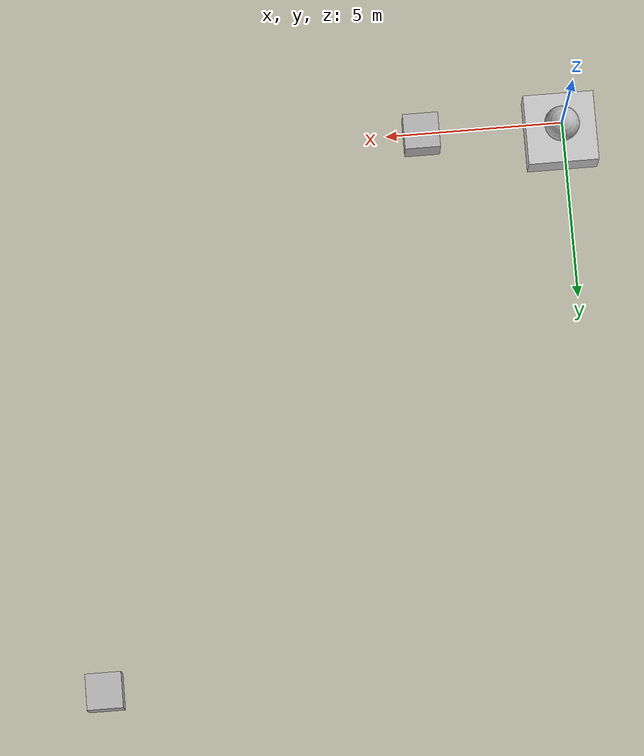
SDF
<?xml version="1.0" ?>
<sdf version="1.7">
  <world name="nested_model_world">
    <physics name="1ms" type="ignored">
      <max_step_size>0.001</max_step_size>
      <real_time_factor>0</real_time_factor>
    </physics>
    <plugin
      filename="libignition-gazebo-physics-system.so"
      name="ignition::gazebo::systems::Physics">
    </plugin>
    <plugin
      filename="libignition-gazebo-scene-broadcaster-system.so"
      name="ignition::gazebo::systems::SceneBroadcaster">
    </plugin>

    <scene>
      <ambient>1.0 1.0 1.0</ambient>
      <background>0.8 0.8 0.8</background>
    </scene>
    <model name="ground_box">
      <static>true</static>
      <pose>0 0 -1 0 0 0</pose>
      <link name="link">
        <collision name="collision">
          <geometry>
            <box>
              <size>2 2 1</size>
            </box>
          </geometry>
        </collision>
        <visual name="visual">
          <geometry>
            <box>
              <size>2 2 1</size>
            </box>
          </geometry>
          <material>
            <ambient>0.8 0.8 0.8 1</ambient>
            <diffuse>0.8 0.8 0.8 1</diffuse>
            <specular>0.8 0.8 0.8 1</specular>
          </material>
        </visual>
      </link>
    </model>

    <model name="model_00">
      <pose>0 0 0.0 0 0 0</pose>
      <link name="link_00">
        <collision name="collision_00">
          <geometry>
            <sphere>
              <radius>0.5</radius>
            </sphere>
          </geometry>
        </collision>
        <visual name="visual_00">
          <geometry>
            <sphere>
              <radius>0.5</radius>
            </sphere>
          </geometry>
        </visual>
      </link>

      <model name="model_01">
        <pose>4 0 0.0 0 0 0</pose>
        <link name="link_01">
          <collision name="collision_01">
            <geometry>
              <box>
                <size>1 1 1</size>
              </box>
            </geometry>
          </collision>
          <visual name="visual_01">
            <geometry>
              <box>
                <size>1 1 1</size>
              </box>
            </geometry>
          </visual>
        </link>
      </model>
    </model>

    <!--
      similar to the nested model above, but each model in this case
      shares the same canonical link
    -->
    <model name="model_10">
      <pose>0 5 0 0 0 0</pose>

      <model name="model_11">
        <pose>4 5 0 0 0 0</pose>

        <model name="model_12">
          <pose>10 5 0 0 0 0</pose>
          <link name="link_12">
            <collision name="collision_12">
              <geometry>
                <box>
                  <size>1 1 1</size>
                </box>
              </geometry>
            </collision>
            <visual name="visual_12">
              <geometry>
                <box>
                  <size>1 1 1</size>
                </box>
              </geometry>
            </visual>
          </link>
        </model>

      </model>

    </model>

  </world>
</sdf>
